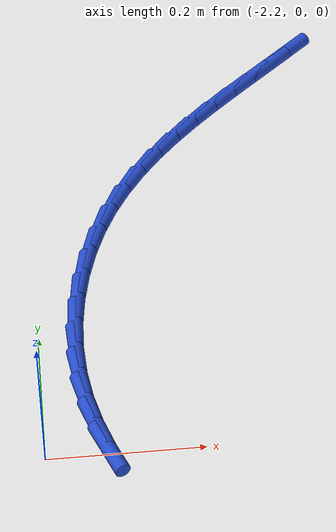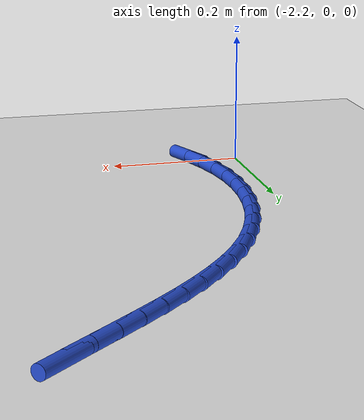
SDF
<sdf version="1.6">
 <world name="default">
  <model name="ground_plane">
   <static>1</static>
   <link name="link">
    <collision name="collision">
     <geometry><plane><normal>0 0 1</normal><size>100 100</size></plane></geometry>
     <surface><friction><ode><mu>100</mu><mu2>50</mu2></ode></friction></surface>
    </collision>
    <visual name="visual">
     <cast_shadows>0</cast_shadows>
     <geometry><plane><normal>0 0 1</normal><size>100 100</size></plane></geometry>
     <material>
      <script><uri>file://media/materials/scripts/gazebo.material</uri><name>Gazebo/WhiteGlow</name></script>
     </material>
    </visual>
   </link>
  </model>
  <model name="line">
   <link name="link_60">
    <pose>-1.7979882410826868 0.7391056637403282 0.01 0 1.57 0.7319609711398238</pose>
    <collision name="collision">
     <geometry><cylinder><radius>0.01</radius><length>0.08</length></cylinder></geometry>
    </collision>
    <visual name="visual">
     <material>
      <script><name>Gazebo/Blue</name><uri>file://media/materials/scripts/gazebo.material</uri></script>
     </material>
     <geometry><cylinder><radius>0.01</radius><length>0.08</length></cylinder></geometry>
    </visual>
   </link>
   <link name="link_61">
    <pose>-1.8305279941316612 0.709870153059869 0.01 0 1.57 0.7260193806174606</pose>
    <collision name="collision">
     <geometry><cylinder><radius>0.01</radius><length>0.08</length></cylinder></geometry>
    </collision>
    <visual name="visual">
     <material>
      <script><name>Gazebo/Blue</name><uri>file://media/materials/scripts/gazebo.material</uri></script>
     </material>
     <geometry><cylinder><radius>0.01</radius><length>0.08</length></cylinder></geometry>
    </visual>
   </link>
   <link name="link_62">
    <pose>-1.8632538416149276 0.6808169857203956 0.01 0 1.57 0.7299973493644972</pose>
    <collision name="collision">
     <geometry><cylinder><radius>0.01</radius><length>0.08</length></cylinder></geometry>
    </collision>
    <visual name="visual">
     <material>
      <script><name>Gazebo/Blue</name><uri>file://media/materials/scripts/gazebo.material</uri></script>
     </material>
     <geometry><cylinder><radius>0.01</radius><length>0.08</length></cylinder></geometry>
    </visual>
   </link>
   <link name="link_63">
    <pose>-1.8958144045034742 0.6516781226558107 0.01 0 1.57 0.7439619231393854</pose>
    <collision name="collision">
     <geometry><cylinder><radius>0.01</radius><length>0.08</length></cylinder></geometry>
    </collision>
    <visual name="visual">
     <material>
      <script><name>Gazebo/Blue</name><uri>file://media/materials/scripts/gazebo.material</uri></script>
     </material>
     <geometry><cylinder><radius>0.01</radius><length>0.08</length></cylinder></geometry>
    </visual>
   </link>
   <link name="link_64">
    <pose>-1.927858303768288 0.6221855248000185 0.01 0 1.57 0.768080903906371</pose>
    <collision name="collision">
     <geometry><cylinder><radius>0.01</radius><length>0.08</length></cylinder></geometry>
    </collision>
    <visual name="visual">
     <material>
      <script><name>Gazebo/Blue</name><uri>file://media/materials/scripts/gazebo.material</uri></script>
     </material>
     <geometry><cylinder><radius>0.01</radius><length>0.08</length></cylinder></geometry>
    </visual>
   </link>
   <link name="link_65">
    <pose>-1.9590341603803558 0.5920711530869222 0.01 0 1.57 0.8025837917932958</pose>
    <collision name="collision">
     <geometry><cylinder><radius>0.01</radius><length>0.08</length></cylinder></geometry>
    </collision>
    <visual name="visual">
     <material>
      <script><name>Gazebo/Blue</name><uri>file://media/materials/scripts/gazebo.material</uri></script>
     </material>
     <geometry><cylinder><radius>0.01</radius><length>0.08</length></cylinder></geometry>
    </visual>
   </link>
   <link name="link_66">
    <pose>-1.9889905953106664 0.5610669684504249 0.01 0 1.57 0.8476882049593696</pose>
    <collision name="collision">
     <geometry><cylinder><radius>0.01</radius><length>0.08</length></cylinder></geometry>
    </collision>
    <visual name="visual">
     <material>
      <script><name>Gazebo/Blue</name><uri>file://media/materials/scripts/gazebo.material</uri></script>
     </material>
     <geometry><cylinder><radius>0.01</radius><length>0.08</length></cylinder></geometry>
    </visual>
   </link>
   <link name="link_67">
    <pose>-2.017376229530206 0.528904931824431 0.01 0 1.57 0.9034858064429354</pose>
    <collision name="collision">
     <geometry><cylinder><radius>0.01</radius><length>0.08</length></cylinder></geometry>
    </collision>
    <visual name="visual">
     <material>
      <script><name>Gazebo/Blue</name><uri>file://media/materials/scripts/gazebo.material</uri></script>
     </material>
     <geometry><cylinder><radius>0.01</radius><length>0.08</length></cylinder></geometry>
    </visual>
   </link>
   <link name="link_68">
    <pose>-2.0438396840099626 0.49531700414284324 0.01 0 1.57 0.9697877017056</pose>
    <collision name="collision">
     <geometry><cylinder><radius>0.01</radius><length>0.08</length></cylinder></geometry>
    </collision>
    <visual name="visual">
     <material>
      <script><name>Gazebo/Blue</name><uri>file://media/materials/scripts/gazebo.material</uri></script>
     </material>
     <geometry><cylinder><radius>0.01</radius><length>0.08</length></cylinder></geometry>
    </visual>
   </link>
   <link name="link_69">
    <pose>-2.0680295797209243 0.46003514633956594 0.01 0 1.57 1.0459454103071812</pose>
    <collision name="collision">
     <geometry><cylinder><radius>0.01</radius><length>0.08</length></cylinder></geometry>
    </collision>
    <visual name="visual">
     <material>
      <script><name>Gazebo/Blue</name><uri>file://media/materials/scripts/gazebo.material</uri></script>
     </material>
     <geometry><cylinder><radius>0.01</radius><length>0.08</length></cylinder></geometry>
    </visual>
   </link>
   <link name="link_70">
    <pose>-2.0895945376340777 0.42279131934850206 0.01 0 1.57 1.1291735530996527</pose>
    <collision name="collision">
     <geometry><cylinder><radius>0.01</radius><length>0.08</length></cylinder></geometry>
    </collision>
    <visual name="visual">
     <material>
      <script><name>Gazebo/Blue</name><uri>file://media/materials/scripts/gazebo.material</uri></script>
     </material>
     <geometry><cylinder><radius>0.01</radius><length>0.08</length></cylinder></geometry>
    </visual>
   </link>
   <link name="link_71">
    <pose>-2.108211925270316 0.3834114835197722 0.01 0 1.57 1.211040522992394</pose>
    <collision name="collision">
     <geometry><cylinder><radius>0.01</radius><length>0.08</length></cylinder></geometry>
    </collision>
    <visual name="visual">
     <material>
      <script><name>Gazebo/Blue</name><uri>file://media/materials/scripts/gazebo.material</uri></script>
     </material>
     <geometry><cylinder><radius>0.01</radius><length>0.08</length></cylinder></geometry>
    </visual>
   </link>
   <link name="link_72">
    <pose>-2.1237086165529653 0.3422104757676396 0.01 0 1.57 1.2904447831189645</pose>
    <collision name="collision">
     <geometry><cylinder><radius>0.01</radius><length>0.08</length></cylinder></geometry>
    </collision>
    <visual name="visual">
     <material>
      <script><name>Gazebo/Blue</name><uri>file://media/materials/scripts/gazebo.material</uri></script>
     </material>
     <geometry><cylinder><radius>0.01</radius><length>0.08</length></cylinder></geometry>
    </visual>
   </link>
   <link name="link_73">
    <pose>-2.135959936318275 0.29966156445449044 0.01 0 1.57 1.369051097048772</pose>
    <collision name="collision">
     <geometry><cylinder><radius>0.01</radius><length>0.08</length></cylinder></geometry>
    </collision>
    <visual name="visual">
     <material>
      <script><name>Gazebo/Blue</name><uri>file://media/materials/scripts/gazebo.material</uri></script>
     </material>
     <geometry><cylinder><radius>0.01</radius><length>0.08</length></cylinder></geometry>
    </visual>
   </link>
   <link name="link_74">
    <pose>-2.14484123439578 0.2562380996691895 0.01 0 1.57 1.448496642157767</pose>
    <collision name="collision">
     <geometry><cylinder><radius>0.01</radius><length>0.08</length></cylinder></geometry>
    </collision>
    <visual name="visual">
     <material>
      <script><name>Gazebo/Blue</name><uri>file://media/materials/scripts/gazebo.material</uri></script>
     </material>
     <geometry><cylinder><radius>0.01</radius><length>0.08</length></cylinder></geometry>
    </visual>
   </link>
   <link name="link_75">
    <pose>-2.1502278606150185 0.2124134315006007 0.01 0 1.57 1.5304250776097263</pose>
    <collision name="collision">
     <geometry><cylinder><radius>0.01</radius><length>0.08</length></cylinder></geometry>
    </collision>
    <visual name="visual">
     <material>
      <script><name>Gazebo/Blue</name><uri>file://media/materials/scripts/gazebo.material</uri></script>
     </material>
     <geometry><cylinder><radius>0.01</radius><length>0.08</length></cylinder></geometry>
    </visual>
   </link>
   <link name="link_76">
    <pose>-2.1519951648055238 0.16866091003758737 0.01 0 1.57 -1.5250794386060509</pose>
    <collision name="collision">
     <geometry><cylinder><radius>0.01</radius><length>0.08</length></cylinder></geometry>
    </collision>
    <visual name="visual">
     <material>
      <script><name>Gazebo/Blue</name><uri>file://media/materials/scripts/gazebo.material</uri></script>
     </material>
     <geometry><cylinder><radius>0.01</radius><length>0.08</length></cylinder></geometry>
    </visual>
   </link>
   <link name="link_77">
    <pose>-2.150018496796834 0.1254538853690147 0.01 0 1.57 -1.4331425958365656</pose>
    <collision name="collision">
     <geometry><cylinder><radius>0.01</radius><length>0.08</length></cylinder></geometry>
    </collision>
    <visual name="visual">
     <material>
      <script><name>Gazebo/Blue</name><uri>file://media/materials/scripts/gazebo.material</uri></script>
     </material>
     <geometry><cylinder><radius>0.01</radius><length>0.08</length></cylinder></geometry>
    </visual>
   </link>
   <link name="link_78">
    <pose>-2.1441740566232745 0.08326484434507236 0.01 0 1.57 -1.339411558170758</pose>
    <collision name="collision">
     <geometry><cylinder><radius>0.01</radius><length>0.08</length></cylinder></geometry>
    </collision>
    <visual name="visual">
     <material>
      <script><name>Gazebo/Blue</name><uri>file://media/materials/scripts/gazebo.material</uri></script>
     </material>
     <geometry><cylinder><radius>0.01</radius><length>0.08</length></cylinder></geometry>
    </visual>
   </link>
   <link name="link_79">
    <pose>-2.1345375615354 0.04236369794381593 0.01 0 1.57 -1.2574487270368455</pose>
    <collision name="collision">
     <geometry><cylinder><radius>0.01</radius><length>0.08</length></cylinder></geometry>
    </collision>
    <visual name="visual">
     <material>
      <script><name>Gazebo/Blue</name><uri>file://media/materials/scripts/gazebo.material</uri></script>
     </material>
     <geometry><cylinder><radius>0.01</radius><length>0.08</length></cylinder></geometry>
    </visual>
   </link>
   <link name="link_80">
    <pose>-2.121639737548715 0.0025583729640198897 0.01 0 1.57 -1.1907538282543098</pose>
    <collision name="collision">
     <geometry><cylinder><radius>0.01</radius><length>0.08</length></cylinder></geometry>
    </collision>
    <visual name="visual">
     <material>
      <script><name>Gazebo/Blue</name><uri>file://media/materials/scripts/gazebo.material</uri></script>
     </material>
     <geometry><cylinder><radius>0.01</radius><length>0.08</length></cylinder></geometry>
    </visual>
   </link>
  </model>
 </world>
</sdf>
